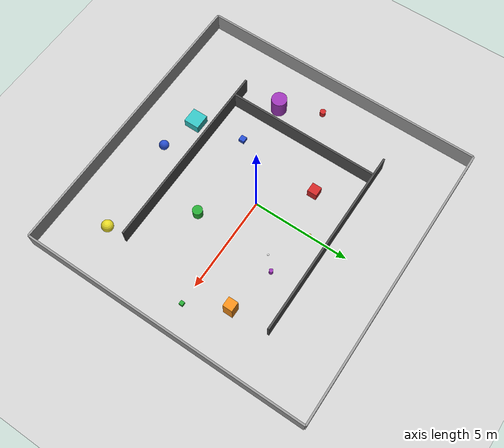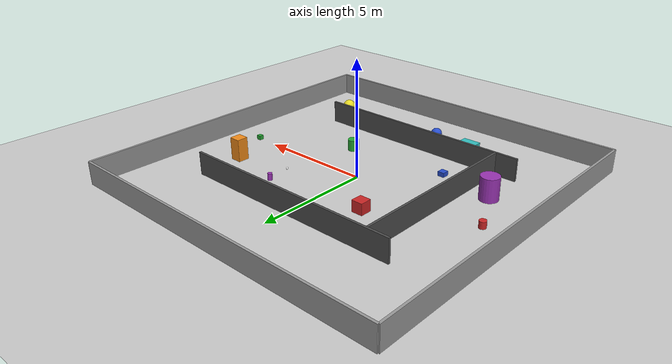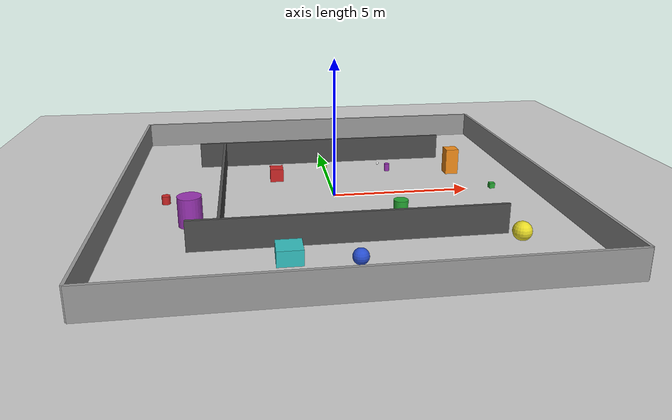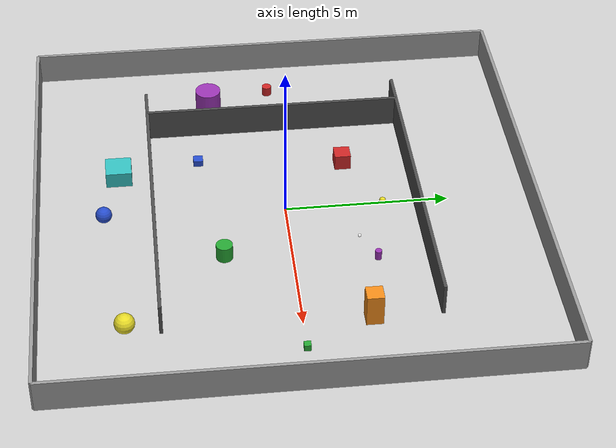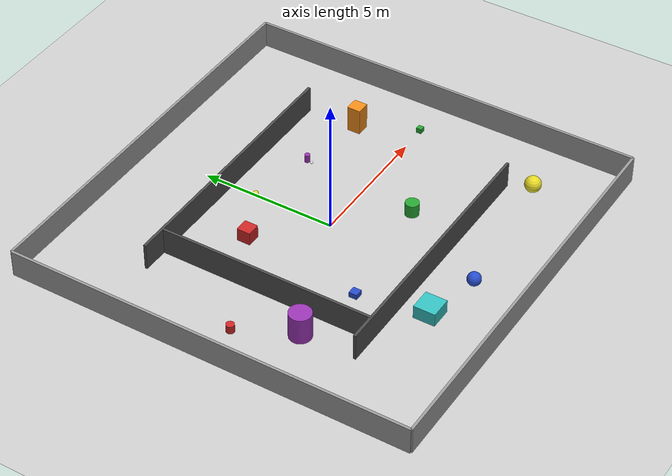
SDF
<sdf version="1.6">
 <world name="my_custom_indoor_world">
  <include><uri>model://sun</uri></include>
  <include><uri>model://ground_plane</uri></include>
  <light name="sun_light" type="directional">
   <pose>0 0 10 0 -30 0</pose>
   <diffuse>0.8 0.8 0.8 1</diffuse>
   <specular>0.2 0.2 0.2 1</specular>
   <attenuation>
    <range>1000</range>
    <constant>0.9</constant>
    <linear>0.01</linear>
    <quadratic>0.001</quadratic>
   </attenuation>
   <direction>-0.5 0.5 -1</direction>
  </light>
  <model name="wall_north">
   <pose>0 7.5 0.5 0 0 0</pose>
   <static>true</static>
   <link name="link">
    <collision name="collision"><geometry><box><size>15 0.1 1</size></box></geometry></collision>
    <visual name="visual">
     <geometry><box><size>15 0.1 1</size></box></geometry>
     <material>
      <script><uri>file://media/materials/scripts/gazebo.material</uri><name>Gazebo/Grey</name></script>
     </material>
    </visual>
   </link>
  </model>
  <model name="wall_south">
   <pose>0 -7.5 0.5 0 0 0</pose>
   <static>true</static>
   <link name="link">
    <collision name="collision"><geometry><box><size>15 0.1 1</size></box></geometry></collision>
    <visual name="visual">
     <geometry><box><size>15 0.1 1</size></box></geometry>
     <material>
      <script><uri>file://media/materials/scripts/gazebo.material</uri><name>Gazebo/Grey</name></script>
     </material>
    </visual>
   </link>
  </model>
  <model name="wall_east">
   <pose>7.5 0 0.5 0 0 1.5707</pose>
   <static>true</static>
   <link name="link">
    <collision name="collision"><geometry><box><size>15 0.1 1</size></box></geometry></collision>
    <visual name="visual">
     <geometry><box><size>15 0.1 1</size></box></geometry>
     <material>
      <script><uri>file://media/materials/scripts/gazebo.material</uri><name>Gazebo/Grey</name></script>
     </material>
    </visual>
   </link>
  </model>
  <model name="wall_west">
   <pose>-7.5 0 0.5 0 0 1.5707</pose>
   <static>true</static>
   <link name="link">
    <collision name="collision"><geometry><box><size>15 0.1 1</size></box></geometry></collision>
    <visual name="visual">
     <geometry><box><size>15 0.1 1</size></box></geometry>
     <material>
      <script><uri>file://media/materials/scripts/gazebo.material</uri><name>Gazebo/Grey</name></script>
     </material>
    </visual>
   </link>
  </model>
  <model name="partition_horizontal_top">
   <pose>0 4 0.5 0 0 0</pose>
   <static>true</static>
   <link name="link">
    <collision name="collision"><geometry><box><size>10 0.1 1</size></box></geometry></collision>
    <visual name="visual">
     <geometry><box><size>10 0.1 1</size></box></geometry>
     <material>
      <script><uri>file://media/materials/scripts/gazebo.material</uri><name>Gazebo/DarkGrey</name></script>
     </material>
    </visual>
   </link>
  </model>
  <model name="partition_horizontal_bottom">
   <pose>0 -4 0.5 0 0 0</pose>
   <static>true</static>
   <link name="link">
    <collision name="collision"><geometry><box><size>10 0.1 1</size></box></geometry></collision>
    <visual name="visual">
     <geometry><box><size>10 0.1 1</size></box></geometry>
     <material>
      <script><uri>file://media/materials/scripts/gazebo.material</uri><name>Gazebo/DarkGrey</name></script>
     </material>
    </visual>
   </link>
  </model>
  <model name="partition_vertical_left">
   <pose>-4 0 0.5 0 0 1.5707</pose>
   <static>true</static>
   <link name="link">
    <collision name="collision"><geometry><box><size>8 0.1 1</size></box></geometry></collision>
    <visual name="visual">
     <geometry><box><size>8 0.1 1</size></box></geometry>
     <material>
      <script><uri>file://media/materials/scripts/gazebo.material</uri><name>Gazebo/DarkGrey</name></script>
     </material>
    </visual>
   </link>
  </model>
  <model name="white_ball">
   <pose>2 2 0.5 0 0 0</pose>
   <link name="link">
    <inertial>
     <mass>0.1</mass>
     <inertia><ixx>0.0004</ixx><ixy>0</ixy><ixz>0</ixz><iyy>0.0004</iyy><iyz>0.0</iyz><izz>0.0004</izz></inertia>
    </inertial>
    <collision name="collision">
     <geometry><sphere><radius>0.05</radius></sphere></geometry>
     <surface><contact><ode><kp>1000000</kp><kd>1</kd></ode></contact></surface>
    </collision>
    <visual name="visual">
     <geometry><sphere><radius>0.05</radius></sphere></geometry>
     <material><ambient>1 1 1 1</ambient><diffuse>1 1 1 1</diffuse><specular>0.1 0.1 0.1 1</specular></material>
    </visual>
   </link>
  </model>
  <model name="red_box">
   <pose>-2 2 0.25 0 0 0</pose>
   <link name="link">
    <collision name="collision"><geometry><box><size>0.5 0.5 0.5</size></box></geometry></collision>
    <visual name="visual">
     <geometry><box><size>0.5 0.5 0.5</size></box></geometry>
     <material>
      <script><uri>file://media/materials/scripts/gazebo.material</uri><name>Gazebo/Red</name></script>
     </material>
    </visual>
   </link>
  </model>
  <model name="green_cylinder">
   <pose>2 -2 0.25 0 0 0</pose>
   <link name="link">
    <collision name="collision">
     <geometry><cylinder><radius>0.25</radius><length>0.5</length></cylinder></geometry>
    </collision>
    <visual name="visual">
     <geometry><cylinder><radius>0.25</radius><length>0.5</length></cylinder></geometry>
     <material>
      <script><uri>file://media/materials/scripts/gazebo.material</uri><name>Gazebo/Green</name></script>
     </material>
    </visual>
   </link>
  </model>
  <model name="blue_sphere">
   <pose>0 -5.5 0.25 0 0 0</pose>
   <link name="link">
    <collision name="collision"><geometry><sphere><radius>0.25</radius></sphere></geometry></collision>
    <visual name="visual">
     <geometry><sphere><radius>0.25</radius></sphere></geometry>
     <material>
      <script><uri>file://media/materials/scripts/gazebo.material</uri><name>Gazebo/Blue</name></script>
     </material>
    </visual>
   </link>
  </model>
  <model name="orange_box_2">
   <pose>5 2 0.5 0 0 1.5707</pose>
   <link name="link">
    <collision name="collision"><geometry><box><size>0.5 0.5 1.0</size></box></geometry></collision>
    <visual name="visual">
     <geometry><box><size>0.5 0.5 1.0</size></box></geometry>
     <material>
      <script><uri>file://media/materials/scripts/gazebo.material</uri><name>Gazebo/Orange</name></script>
     </material>
    </visual>
   </link>
  </model>
  <model name="purple_cylinder_2">
   <pose>-5 -2 0.5 0 0 0</pose>
   <link name="link">
    <collision name="collision">
     <geometry><cylinder><radius>0.4</radius><length>1.0</length></cylinder></geometry>
    </collision>
    <visual name="visual">
     <geometry><cylinder><radius>0.4</radius><length>1.0</length></cylinder></geometry>
     <material>
      <script><uri>file://media/materials/scripts/gazebo.material</uri><name>Gazebo/Purple</name></script>
     </material>
    </visual>
   </link>
  </model>
  <model name="teal_box_3">
   <pose>-2 -5 0.25 0 0 0</pose>
   <link name="link">
    <collision name="collision"><geometry><box><size>0.8 0.8 0.5</size></box></geometry></collision>
    <visual name="visual">
     <geometry><box><size>0.8 0.8 0.5</size></box></geometry>
     <material>
      <script><uri>file://media/materials/scripts/gazebo.material</uri><name>Gazebo/Turquoise</name></script>
     </material>
    </visual>
   </link>
  </model>
  <model name="yellow_sphere_2">
   <pose>5 -5 0.5 0 0 0</pose>
   <link name="link">
    <collision name="collision"><geometry><sphere><radius>0.3</radius></sphere></geometry></collision>
    <visual name="visual">
     <geometry><sphere><radius>0.3</radius></sphere></geometry>
     <material>
      <script><uri>file://media/materials/scripts/gazebo.material</uri><name>Gazebo/Yellow</name></script>
     </material>
    </visual>
   </link>
  </model>
  <model name="small_green_box">
   <pose>6 0 0.1 0 0 0</pose>
   <link name="link">
    <collision name="collision"><geometry><box><size>0.2 0.2 0.2</size></box></geometry></collision>
    <visual name="visual">
     <geometry><box><size>0.2 0.2 0.2</size></box></geometry>
     <material>
      <script><uri>file://media/materials/scripts/gazebo.material</uri><name>Gazebo/Green</name></script>
     </material>
    </visual>
   </link>
  </model>
  <model name="small_red_cylinder">
   <pose>-6 0 0.15 0 0 0</pose>
   <link name="link">
    <collision name="collision">
     <geometry><cylinder><radius>0.15</radius><length>0.3</length></cylinder></geometry>
    </collision>
    <visual name="visual">
     <geometry><cylinder><radius>0.15</radius><length>0.3</length></cylinder></geometry>
     <material>
      <script><uri>file://media/materials/scripts/gazebo.material</uri><name>Gazebo/Red</name></script>
     </material>
    </visual>
   </link>
  </model>
  <model name="small_yellow_sphere">
   <pose>0 3 0.1 0 0 0</pose>
   <link name="link">
    <collision name="collision"><geometry><sphere><radius>0.1</radius></sphere></geometry></collision>
    <visual name="visual">
     <geometry><sphere><radius>0.1</radius></sphere></geometry>
     <material>
      <script><uri>file://media/materials/scripts/gazebo.material</uri><name>Gazebo/Yellow</name></script>
     </material>
    </visual>
   </link>
  </model>
  <model name="small_blue_box_2">
   <pose>-2.5 -2.5 0.1 0 0 0</pose>
   <link name="link">
    <collision name="collision"><geometry><box><size>0.3 0.3 0.2</size></box></geometry></collision>
    <visual name="visual">
     <geometry><box><size>0.3 0.3 0.2</size></box></geometry>
     <material>
      <script><uri>file://media/materials/scripts/gazebo.material</uri><name>Gazebo/Blue</name></script>
     </material>
    </visual>
   </link>
  </model>
  <model name="small_purple_cylinder_2">
   <pose>2.5 2.5 0.15 0 0 0</pose>
   <link name="link">
    <collision name="collision">
     <geometry><cylinder><radius>0.1</radius><length>0.3</length></cylinder></geometry>
    </collision>
    <visual name="visual">
     <geometry><cylinder><radius>0.1</radius><length>0.3</length></cylinder></geometry>
     <material>
      <script><uri>file://media/materials/scripts/gazebo.material</uri><name>Gazebo/Purple</name></script>
     </material>
    </visual>
   </link>
  </model>
 </world>
</sdf>
